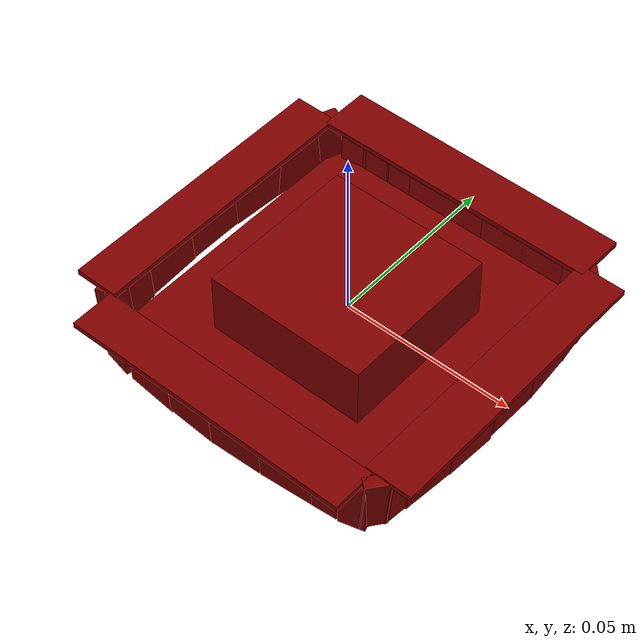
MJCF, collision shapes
<mujoco model="model">
  <option timestep="0.002" gravity="0.0 0.0 -9.81"/>
  <compiler angle="radian"/>
  <asset>
    <texture file="visuals/T_BC001.png" name="lid_material" type="2d"/>
    <material name="lid_material" rgba="1 1 1 1.0" texture="lid_material" shininess="0.1" specular="4"/>
    <mesh file="visuals/lid.obj" name="lid_vis"/>
  </asset>
  <default>
    <default class="visual">
      <geom conaffinity="0" contype="0" group="1" type="mesh"/>
    </default>
    <default class="collision">
      <geom group="0" rgba="0.5 0 0 0.5" density="1000" solref="0.01 1.8" solimp="0.8 0.95 0.02" condim="3"/>
    </default>
    <default class="spawn">
      <geom group="0" rgba="1 1 1 0.5" contype="0" conaffinity="0"/>
      <site group="0" rgba="1 1 1 0.5"/>
    </default>
    <default class="region">
      <geom group="1" conaffinity="0" contype="0" rgba="0 1 0 0"/>
    </default>
  </default>
  <worldbody>
    <body>
      <body name="object">
        <geom mesh="lid_vis" type="mesh" solimp="0.998 0.998 0.001" solref="0.001 1" friction="0.95 0.3 0.1" class="visual" material="lid_material"/>
         <geom type="box" name="handle_main" pos="-0.0004178315866738558 3.3260323107242584e-05 0.002597119892016053" size="0.023568520322442055 0.023568520322442055 0.010026845149695873" quat="1.0 0.0 0.0 0.0" class="collision"/>
         <geom type="box" pos="-0.0005589049542322755 0.0007148217409849167 -0.007278595119714737" size="0.04190293699502945 0.043372415006160736 0.001828211359679699" quat="1.0 0.0 0.0 0.0" class="collision"/>
         <geom type="box" pos="-0.048103172332048416 0.0005819294601678848 -0.00018644682131707668" size="0.0015029571950435638 0.008403775282204151 0.008214022032916546" quat="0.9993841648101807 0.0 -0.035090021789073944 0.0" class="collision"/>
         <geom type="box" pos="0.00037750115734525025 0.04658650606870651 0.008192237466573715" size="0.04202914610505104 0.007155860774219036 0.0007957094931043684" quat="1.0 0.0 0.0 0.0" class="collision"/>
         <geom type="box" pos="0.00037750101182609797 -0.04721982404589653 0.008192237466573715" size="0.04202916473150253 0.0063075413927435875 0.0007957100751809776" quat="1.0 0.0 0.0 0.0" class="collision"/>
         <geom type="box" pos="0.04665621742606163 0.0005819294019602239 0.008192237466573715" size="0.006768289487808943 0.041172828525304794 0.0007957105990499258" quat="1.0 0.0 0.0 0.0" class="collision"/>
         <geom type="box" pos="-0.047003865242004395 0.0005819295765832067 0.008192237466573715" size="0.006299661006778479 0.04117284715175629 0.000795711122918874" quat="1.0 0.0 0.0 0.0" class="collision"/>
         <geom type="box" pos="-0.04747554659843445 -0.016323046758770943 -0.00018644682131707668" size="0.001502957078628242 0.008403775282204151 0.008214022032916546" quat="0.9990810751914978 0.0008640906307846308 -0.035079389810562134 0.024609800428152084" class="collision"/>
         <geom type="box" pos="-0.04633926600217819 -0.028373122215270996 -0.00018644682131707668" size="0.001502952422015369 0.004129952751100063 0.008214022032916546" quat="0.9982878565788269 0.0016431655967608094 -0.03505152836441994 0.046798307448625565" class="collision"/>
         <geom type="box" pos="-0.04517175257205963 -0.037420451641082764 -0.00018644682131707668" size="0.0015029523056000471 0.004129952751100063 0.008214022032916546" quat="0.9942439794540405 0.0035543586127460003 -0.03490955010056496 0.10123017430305481" class="collision"/>
         <geom type="box" pos="-0.047296687960624695 0.017038043588399887 -0.00018644682131707668" size="0.0015029571950435638 0.008403775282204151 0.008214022032916546" quat="0.9988471865653992 -0.0011501206317916512 -0.035071175545454025 -0.03275609761476517" class="collision"/>
         <geom type="box" pos="-0.04603271558880806 0.031840257346630096 -0.00018644682131707668" size="0.0015029571950435638 0.008403775282204151 0.008214022032916546" quat="0.9976952075958252 0.00813323725014925 -0.03993234410881996 -0.054254330694675446" class="collision"/>
         <geom type="box" pos="-0.04361877590417862 0.04228362441062927 -0.00018644682131707668" size="0.0014953878708183765 0.0033937408588826656 0.008213529363274574" quat="0.9796676635742188 0.0023361011408269405 -0.04068518802523613 -0.19644470512866974" class="collision"/>
         <geom type="box" pos="-0.036551281809806824 0.04551418498158455 -0.00018644682131707668" size="0.0014953878708183765 0.0033937408588826656 0.008213529363274574" quat="0.7582994699478149 -0.017867859452962875 -0.03662623465061188 -0.6506313681602478" class="collision"/>
         <geom type="box" pos="-0.02880781888961792 0.046414151787757874 -0.00018644682131707668" size="0.0014953878708183765 0.0033937408588826656 0.008213529363274574" quat="0.7462371587753296 -0.018536707386374474 -0.03629232197999954 -0.664431631565094" class="collision"/>
         <geom type="box" pos="-0.021472865715622902 0.04707160219550133 -0.00018644682131707668" size="0.0014953877544030547 0.0033937408588826656 0.008213529363274574" quat="0.7464361786842346 -0.018525829538702965 -0.03629787638783455 -0.6642079949378967" class="collision"/>
         <geom type="box" pos="-0.006556943990290165 0.04784799739718437 -0.00018644682131707668" size="0.001534639741294086 0.012958620674908161 0.008249936625361443" quat="0.7160251140594482 -0.02012855000793934 -0.03543421998620033 -0.6968839764595032" class="collision"/>
         <geom type="box" pos="0.013151668943464756 0.04756232351064682 -0.00018644682131707668" size="0.0015342640690505505 0.006944587919861078 0.008248421363532543" quat="0.6851069927215576 -0.021647373214364052 -0.03452729433774948 -0.7273015975952148" class="collision"/>
         <geom type="box" pos="0.02706374041736126 0.0467052087187767 -0.00018644682131707668" size="0.0015342638362199068 0.006944588851183653 0.008248421363532543" quat="0.6844793558120728 -0.021677151322364807 -0.0345086045563221 -0.7278923392295837" class="collision"/>
         <geom type="box" pos="0.036988865584135056 0.045304328203201294 -0.0002231632824987173" size="0.0015342638362199068 0.0035444549284875393 0.008248421363532543" quat="0.6319355964660645 -0.031934402883052826 -0.025316724553704262 -0.7739487290382385" class="collision"/>
         <geom type="box" pos="0.042427629232406616 0.0424354113638401 -8.932105265557766e-05" size="0.0015342638362199068 0.0035444549284875393 0.008248421363532543" quat="0.36718684434890747 -0.0227427426725626 -0.03381583094596863 -0.9292540550231934" class="collision"/>
         <geom type="box" pos="0.04578933119773865 0.03613411635160446 0.00040746876038610935" size="0.001534263719804585 0.0035444549284875393 0.008248421363532543" quat="0.072986900806427 -0.0471966415643692 -0.0028061121702194214 -0.996211588382721" class="collision"/>
         <geom type="box" pos="0.04631038010120392 0.029627099633216858 -0.00016364804469048977" size="0.0015342640690505505 0.0035444549284875393 0.008248421363532543" quat="0.07190815359354019 -0.047193579375743866 -0.0028572124429047108 -0.9962900280952454" class="collision"/>
         <geom type="box" pos="0.04738372564315796 0.018781650811433792 -0.00012861541472375393" size="0.0015342640690505505 0.007432045880705118 0.008248421363532543" quat="0.04425700753927231 -0.047096215188503265 -0.004164630081504583 -0.9979007840156555" class="collision"/>
         <geom type="box" pos="0.04797273874282837 0.0039275274612009525 2.2167805582284927e-06" size="0.0015342640690505505 0.007432045880705118 0.008248421363532543" quat="0.0029191134963184595 0.04684699326753616 0.006384130567312241 0.9988774061203003" class="collision"/>
         <geom type="box" pos="0.04785152152180672 -0.01171436719596386 -0.00021273246966302395" size="0.0015342640690505505 0.007432045880705118 0.008248421363532543" quat="0.02323690615594387 0.046707432717084885 0.007335726637393236 0.998611330986023" class="collision"/>
         <geom type="box" pos="0.046772465109825134 -0.026401912793517113 7.287808693945408e-05" size="0.0015342640690505505 0.0074320463463664055 0.008248421363532543" quat="0.04204992204904556 0.04656091332435608 0.008214544504880905 0.9979962110519409" class="collision"/>
         <geom type="box" pos="0.0455685518682003 -0.03679591044783592 0.0003164077643305063" size="0.0015342640690505505 0.003536115400493145 0.008248419500887394" quat="0.038286276161670685 0.046591561287641525 0.008038886822760105 0.9981476664543152" class="collision"/>
         <geom type="box" pos="0.04378354921936989 -0.04176393523812294 0.0005465561989694834" size="0.0015342641854658723 0.003536115400493145 0.008248419500887394" quat="0.30016249418258667 0.04282217100262642 0.0200414527207613 0.9527156352996826" class="collision"/>
         <geom type="box" pos="0.03994012624025345 -0.04451869800686836 -5.905679427087307e-05" size="0.0015342640690505505 0.003536115400493145 0.008248419500887394" quat="0.6055430769920349 0.008613420650362968 0.0006014109821990132 0.7957656979560852" class="collision"/>
         <geom type="box" pos="0.032833606004714966 -0.04602804780006409 2.035149373114109e-05" size="0.0015342640690505505 0.003536115400493145 0.008248419500887394" quat="0.6721822619438171 0.029408905655145645 -0.01762588508427143 0.7395914196968079" class="collision"/>
         <geom type="box" pos="0.021692903712391853 -0.046989791095256805 0.00017827400006353855" size="0.001534263719804585 0.007473090663552284 0.00824841856956482" quat="0.6765791177749634 0.02951345592737198 -0.017450259998440742 0.7355713248252869" class="collision"/>
         <geom type="box" pos="0.006522332783788443 -0.04796993359923363 0.0004149938467890024" size="0.001534263719804585 0.0074730911292135715 0.00824841856956482" quat="0.6905670762062073 0.02984282374382019 -0.016880812123417854 0.7224552035331726" class="collision"/>
         <geom type="box" pos="-0.007581624202430248 -0.04786974936723709 0.00033743330277502537" size="0.001534263719804585 0.007473090663552284 0.00824841856956482" quat="0.7230433821678162 0.02870369888842106 -0.017535608261823654 0.6899832487106323" class="collision"/>
         <geom type="box" pos="-0.021977975964546204 -0.046918418258428574 -1.0300194844603539e-05" size="0.001534263719804585 0.007473090663552284 0.00824841856956482" quat="0.7342655658721924 0.028987515717744827 -0.01706235483288765 0.6780285239219666" class="collision"/>
         <geom type="box" pos="-0.03517703711986542 -0.045599449425935745 0.00026510306634008884" size="0.001534263719804585 0.004254154395312071 0.008248419500887394" quat="0.7725723385810852 0.029933586716651917 -0.015342112630605698 0.6340351700782776" class="collision"/>
         <geom class="region" name="reg_main" density="0" type="box" pos="0.0005737399999999997 -0.00046728000000000047 0.0018043199999999999" size="0.06 0.06 0.1"/>
      </body>
    </body>
  </worldbody>
</mujoco>
